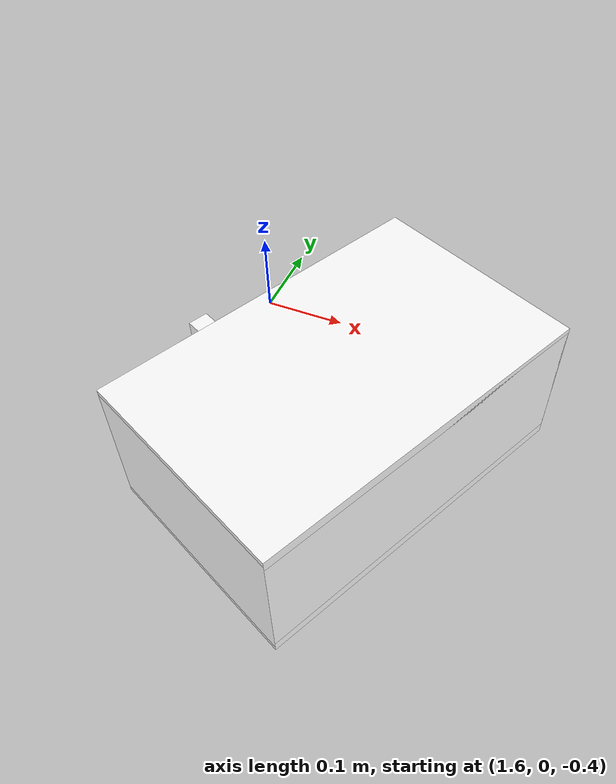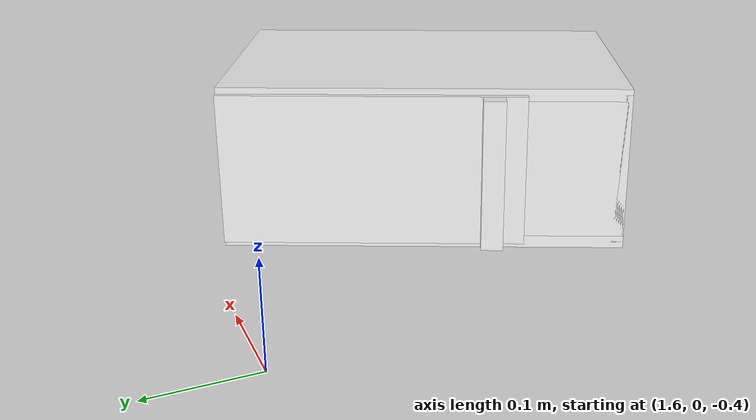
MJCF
<mujoco model="cabinet">
    <compiler angle="radian" eulerseq='zxy' />
    <option gravity = "0 0 0" />
    <option>
        <flag contact = "disable"/>
    </option>
    <statistic	extent="1.0" center="0.0 0.0 0.0"/>
    <visual>
        <map fogstart="3" fogend="5" force="0.1" znear=" 0.100000 " zfar=" 12.000000 "/>
    </visual>
    <size njmax="500" nconmax="100" />
    <actuator>
        <velocity joint="bottom_left_hinge" name="viva_revolution" kv='10'></velocity>
    </actuator>
    <asset>
        <texture builtin="flat" name="tabletex" height="32" width="32" rgb1="1 1 1" type="cube"></texture>
        <texture builtin="flat" name="objtex" height="32" width="32" rgb1="1 1 1" type="cube"></texture>
        <texture builtin="flat" name="handletex" height="32" width="32" rgb1="1 1 1" type="cube"></texture>
        <texture builtin="flat" name="wallpaper" height="32" width="32" rgb1="1 0 0" type="cube"></texture>
        <texture builtin="flat" name="kp" height="32" width="32" rgb1="1 1 1" type="cube"></texture>
        <material name="geomTable" shininess="0.03" specular="0.75" texture="tabletex"></material>
        <material name="geomObj" shininess="0.03" specular="0.75" texture="objtex"></material>
        <material name="geomHandle" shininess="0.03" specular="0.75" texture="handletex"></material>
        <material name="ax" shininess="0.03" specular="0.75" texture="wallpaper"></material>
        <material name="bg" shininess="0.03" specular="0.75" texture="wallpaper"></material>
        <material name="geomKeypad" shininess="0.03" specular="0.75" texture="kp"></material>
    </asset>
    <worldbody>
        <body name="cabinet_bottom" pos= " 1.795769 -0.225698 -0.356710 "  quat= " 0.215087 0.000000 0.000000 0.976595" >
            <inertial pos="0 0 0" mass="1" diaginertia="1 1 1" />
            <geom size= " 0.115907 0.184232 0.005699 "  type="box" material="geomObj" name="b"/>
            <body name="cabinet_left" pos= " 0.000000 -0.178533 0.070396 " >
                <inertial pos="0 0 0" mass="1" diaginertia="1 1 1" />
                <geom size= " 0.115907 0.005699 0.070396 "  type="box" material="geomObj" name="c" />
            </body>
            <body name="cabinet_right" pos= " 0.000000 0.178533 0.070396 " >
                <inertial pos="0 0 0" mass="1" diaginertia="1 1 1" />
                <geom size= " 0.115907 0.005699 0.070396 "  type="box" material="geomObj" name="d" />
            </body>
            <body name="cabinet_top" pos= " 0.000000 0.000000 0.140792 " >
                <inertial pos="0 0 0" mass="1" diaginertia="1 1 1" />
                <geom size= " 0.115907 0.184232 0.005699 "  type="box" material="geomObj" name="e"/>
            </body>
            <body name="cabinet_back" pos= " -0.110208 0.000000 0.070396 "  >
                <inertial pos="0 0 0" mass="1" diaginertia="1 1 1" />
                <geom size= " 0.005699 0.184232 0.070396 "  type="box" material="geomObj" name="f" />
            </body>
            <body name="cabinet_keypad" pos= " 0.005699 0.137174 0.070396 " >
                <inertial pos="0 0 0" mass="1" diaginertia="1 1 1" />
                <geom size= " 0.110208 0.046058 0.064697 "  type="box" material="geomKeypad" name="keypizzlemynizzle" />
            </body>
            <body name="cabinet_left_hinge" pos= " 0.115907 -0.184232 0.070396 " >
                <inertial pos= " 0.000000 0.138174 0.000000 "  mass="1" diaginertia="1 1 1" />
                <joint name="bottom_left_hinge" type="hinge" pos="0 0 0" axis="0 0 1" limited="true" range= "-2.3 0"  />
                <geom size= " 0.005699 0.138174 0.070396 "  pos= " 0.000000 0.138174 0.000000 "  type="box" material="geomObj" name="g"/>
                <body name="handle_link" pos= " 0.010000 0.246348 0.000000 " >
                    <inertial pos="0 0 0" mass="1" diaginertia="1 1 1" />
                    <geom size= " 0.010000 0.010000 0.070396 "  type="box" material="geomHandle" name="h"/>
                </body>
            </body>
        </body>
        <body name="external_camera_body_0" pos="0.0 0 0.00" >
            <camera euler="-1.57 1.57 0.0" fovy=" 54.280851 " name="external_camera_0" pos="0.0 0 0"></camera>
            <inertial pos= " 0.00 0.0 0.000000 " mass="1" diaginertia="1 1 1" />
            <joint name="cam_j" pos="0.0 0 0" axis = "1 0 0" type="free" />
        </body>
    </worldbody>
</mujoco>
